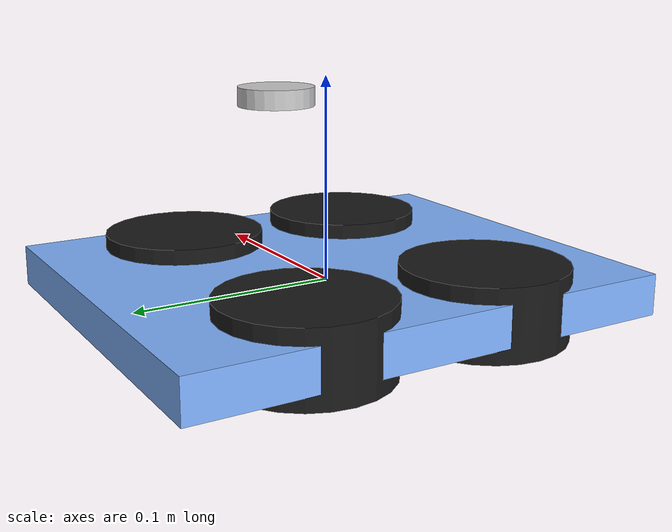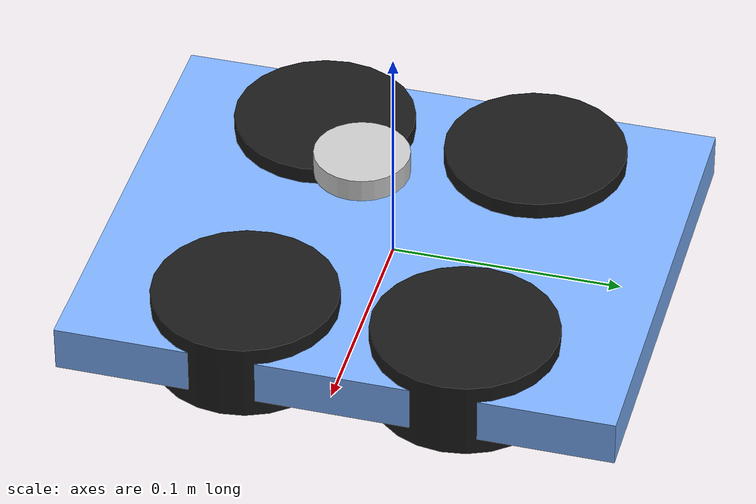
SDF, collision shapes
<?xml version="1.0"?>
<sdf version="1.5">
  <model name="jsc_mecanum_bot">
    <static>false</static>
    <pose>0 0 0 0 0 0</pose>

    <!-- ****************** ROBOT BASE FOOTPRINT ***************************  -->
    <link name="base_footprint"/>

    <!-- ********************** ROBOT BASE *********************************  -->
    <link name="base_link">
      <inertial>
        <mass>8</mass>

      </inertial>
      <collision name="base_collision">
        <pose>0 0 0 0 0 0</pose>
        <geometry>
          <box>
            <size>0.2 0.24 0.02</size>
          </box>
        </geometry>
      </collision>

      <visual name="base_visual">
        <pose>0 0 0.04 0 0 0</pose>
        <geometry>
          <box>
            <size>0.2 0.075 0.078</size>
          </box>
        </geometry>
        <material>
          <ambient>0.5 0.7 1.0 1</ambient>
          <diffuse>0.5 0.7 1.0 1</diffuse>
          <specular>0 0 0 0</specular>
          <emissive>0 0 0 1</emissive>
        </material>
      </visual>
    </link>

    <!-- *********************** DRIVE WHEELS ******************************  -->
    <link name="fl_wheel_link">
      <pose>0.063 0.04750 0 0 0 1.570796327</pose>
      <inertial>
        <mass>0.2</mass>
        <inertia>
          <ixx>0.01</ixx> <iyy>0.01</iyy> <izz>0.01</izz>
        </inertia>
      </inertial>
      <collision name="fl_wheel_collision">
        <geometry>
          <cylinder>
            <radius>0.04</radius>
            <length>0.035</length>
          </cylinder>
        </geometry>
      </collision>

      <visual name="fl_wheel_visual">
        <geometry>
          <mesh>
            <uri>model://jsc_mecanum_bot_description/meshes/fl_wheel_link.STL</uri>
            <scale>0.5 0.5 0.5</scale>
          </mesh>
          <cylinder>
            <radius>0.04</radius>
            <length>0.035</length>
          </cylinder>
        </geometry>
        <material>
          <ambient>0.1 0.1 0.1 1</ambient>
          <diffuse>0.1 0.1 0.1 1</diffuse>
          <specular>0 0 0 0</specular>
          <emissive>0 0 0 1</emissive>
        </material>
      </visual>
    </link>

    <link name="fr_wheel_link">
      <pose>0.063 -0.04750 0 0 0 -1.570796327</pose>
      <inertial>
        <mass>0.2</mass>
        <inertia>
          <ixx>0.01</ixx> <iyy>0.01</iyy> <izz>0.01</izz>
        </inertia>
      </inertial>
      <collision name="fr_wheel_collision">
        <geometry>
          <cylinder>
            <radius>0.04</radius>
            <length>0.035</length>
          </cylinder>
        </geometry>
      </collision>

      <visual name="fr_wheel_visual">
        <geometry>
          <mesh>
            <uri>model://jsc_mecanum_bot_description/meshes/fr_wheel_link.STL</uri>
            <scale>0.5 0.5 0.5</scale>
          </mesh>
          <cylinder>
            <radius>0.04</radius>
            <length>0.035</length>
          </cylinder>
        </geometry>
        <material>
          <ambient>0.1 0.1 0.1 1</ambient>
          <diffuse>0.1 0.1 0.1 1</diffuse>
          <specular>0 0 0 0</specular>
          <emissive>0 0 0 1</emissive>
        </material>
      </visual>
    </link>

    <link name="rl_wheel_link">
      <pose>-0.063 0.04750 0 0 0 1.570796327</pose>
      <inertial>
        <mass>0.2</mass>
        <inertia>
          <ixx>0.01</ixx> <iyy>0.01</iyy> <izz>0.01</izz>
        </inertia>
      </inertial>
      <collision name="rl_wheel_collision">
        <geometry>
          <cylinder>
            <radius>0.04</radius>
            <length>0.035</length>
          </cylinder>
        </geometry>
      </collision>

      <visual name="rl_wheel_visual">
        <geometry>
          <mesh>
            <uri>model://jsc_mecanum_bot_description/meshes/rl_wheel_link.STL</uri>
            <scale>0.5 0.5 0.5</scale>
          </mesh>
          <cylinder>
            <radius>0.04</radius>
            <length>0.035</length>
          </cylinder>
        </geometry>
        <material>
          <ambient>0.1 0.1 0.1 1</ambient>
          <diffuse>0.1 0.1 0.1 1</diffuse>
          <specular>0 0 0 0</specular>
          <emissive>0 0 0 1</emissive>
        </material>
      </visual>
    </link>

    <link name="rr_wheel_link">
      <pose>-0.063 -0.04750 0 0 0 -1.570796327</pose>
      <inertial>
        <mass>0.2</mass>
        <inertia>
          <ixx>0.01</ixx> <iyy>0.01</iyy> <izz>0.01</izz>
        </inertia>
      </inertial>
      <collision name="rr_wheel_collision">
        <geometry>
          <cylinder>
            <radius>0.04</radius>
            <length>0.035</length>
          </cylinder>
        </geometry>
      </collision>

      <visual name="rr_wheel_visual">
        <geometry>
          <mesh>
            <uri>model://jsc_mecanum_bot_description/meshes/fr_wheel_link.STL</uri>
            <scale>0.5 0.5 0.5</scale>
          </mesh>
          <cylinder>
            <radius>0.04</radius>
            <length>0.035</length>
          </cylinder>
        </geometry>
        <material>
          <ambient>0.1 0.1 0.1 1</ambient>
          <diffuse>0.1 0.1 0.1 1</diffuse>
          <specular>0 0 0 0</specular>
          <emissive>0 0 0 1</emissive>
        </material>
      </visual>
    </link>

    <link name="lidar_link">
      <pose>0.05 0 0.085 0 0 0</pose>
      <inertial>
        <mass>0.1</mass>
        <inertia>
          <ixx>0.01</ixx> <iyy>0.01</iyy> <izz>0.01</izz>
        </inertia>
      </inertial>
      <collision name="lidar_collision">
        <geometry>
          <cylinder>
            <radius>0.02</radius>
            <length>0.01</length>
          </cylinder>
        </geometry>
      </collision>

      <visual name="lidar_visual">
        <geometry>
          <cylinder>
            <radius>0.02</radius>
            <length>0.01</length>
          </cylinder>
        </geometry>
        <material>
          <ambient>0.8 0.8 0.8 1</ambient>
          <diffuse>0.8 0.8 0.8 1</diffuse>
          <specular>0 0 0 0</specular>
          <emissive>0 0 0 1</emissive>
        </material>
      </visual>

      <sensor name="lidar" type="ray">
        <always_on>true</always_on>
        <visualize>true</visualize>
        <update_rate>3200</update_rate>
        <ray>
          <scan>
            <horizontal>
              <samples>360</samples>
              <resolution>1.00000</resolution>
              <min_angle>0.000000</min_angle>
              <max_angle>6.280000</max_angle>
            </horizontal>
          </scan>
          <range>
            <min>0.060000</min>
            <max>30</max>
            <resolution>0.015000</resolution>
          </range>
          <noise>
            <type>gaussian</type>
            <mean>0.0</mean>
            <stddev>0.01</stddev>
          </noise>
        </ray>
        <plugin name="scan" filename="libgazebo_ros_ray_sensor.so">
          <ros>
            <remapping>~/out:=scan</remapping>
          </ros>
          <output_type>sensor_msgs/LaserScan</output_type>
          <frame_name>laser</frame_name>
        </plugin>
        </sensor>

    </link>

    <!-- *********************** JOINTS ************************************  -->
    <joint name="fl_wheel_joint" type="revolute">
      <parent>base_link</parent>
      <child>fl_wheel_link</child>
      <pose>0 0 0 0 0 0</pose>
      <axis>
        <xyz>1 0 0</xyz>
      </axis>
    </joint>

    <joint name="fr_wheel_joint" type="revolute">
      <parent>base_link</parent>
      <child>fr_wheel_link</child>
      <pose>0 0 0 1.570796327 0 0</pose>
      <axis>
        <xyz>-1 0 0</xyz>
      </axis>
    </joint>

    <joint name="rl_wheel_joint" type="revolute">
      <parent>base_link</parent>
      <child>rl_wheel_link</child>
      <pose>0 0 0 1.570796327 0 0</pose>
      <axis>
        <xyz>1 0 0</xyz>
      </axis>
    </joint>

    <joint name="rr_wheel_joint" type="revolute">
      <parent>base_link</parent>
      <child>rr_wheel_link</child>
      <pose>0 0 0 1.570796327 0 0</pose>
      <axis>
        <xyz>-1 0 0</xyz>
      </axis>
    </joint>

    <joint name="lidar_joint" type="fixed">
      <parent>base_link</parent>
      <child>lidar_link</child>
      <pose>0.05 0 0.085 0 0 0</pose>
    </joint>

<!-- *********************** JOINT STATE PUBLISHER *********************   -->

  <plugin name="jsc_mecanum_bot_joint_state" filename="libgazebo_ros_joint_state_publisher.so">
    <ros>
      <remapping>~/out:=joint_states</remapping>
    </ros>
    <update_rate>30</update_rate>

    <joint_name>fl_wheel_joint</joint_name>
    <joint_name>fr_wheel_joint</joint_name>

    <joint_name>rl_wheel_joint</joint_name>
    <joint_name>rr_wheel_joint</joint_name>

  </plugin>

   <!-- *********************** WHEEL ODOMETRY ***************************    -->

   <plugin name="jsc_mobile_bot_diff_drive" filename="libgazebo_ros_diff_drive.so">

    <update_rate>30</update_rate>

    <!-- PRUEBA-->
    <num_wheel_pairs>2</num_wheel_pairs>

    <left_joint>fl_wheel_joint</left_joint>
    <left_joint> rl_wheel_joint</left_joint>

    <right_joint>fr_wheel_joint</right_joint>
    <right_joint>rr_wheel_joint</right_joint>

    <!-- kinematics -->
    <wheel_separation>0.19</wheel_separation>
    <wheel_diameter>0.08</wheel_diameter>

    <!-- limits -->
    <max_wheel_torque>2</max_wheel_torque>
    <max_wheel_acceleration>1.0</max_wheel_acceleration>

    <!-- Receive velocity commands on this ROS topic -->
    <command_topic>cmd_vel</command_topic>

    <!-- output -->
    <!-- When false, publish no wheel odometry data to a ROS topic -->
    <publish_odom>true</publish_odom>

    <!-- When true, publish coordinate transform from odom to base_footprint -->
    <!-- I usually use the robot_localization package to publish this transform -->
    <publish_odom_tf>false</publish_odom_tf>

    <!-- When true, publish coordinate transform from base_link to the wheels -->
    <!-- The robot_state_publisher package is often used to publish this transform -->
    <publish_wheel_tf>false</publish_wheel_tf>

    <odometry_topic>odom</odometry_topic>
    <odometry_frame>odom</odometry_frame>

    <!-- PRUEBA antes era  base_footprint ******************************************-->
    <robot_base_frame>base_link</robot_base_frame>

    <!-- Odometry source, 0 for ENCODER, 1 for WORLD, defaults to WORLD -->
    <odometry_source>0</odometry_source>

    <!-- Change the ROS topic we will publish the odometry data to -->
    <ros>
      <remapping>odom:=wheel/odometry</remapping>
    </ros>

  </plugin>

  </model>
</sdf>
